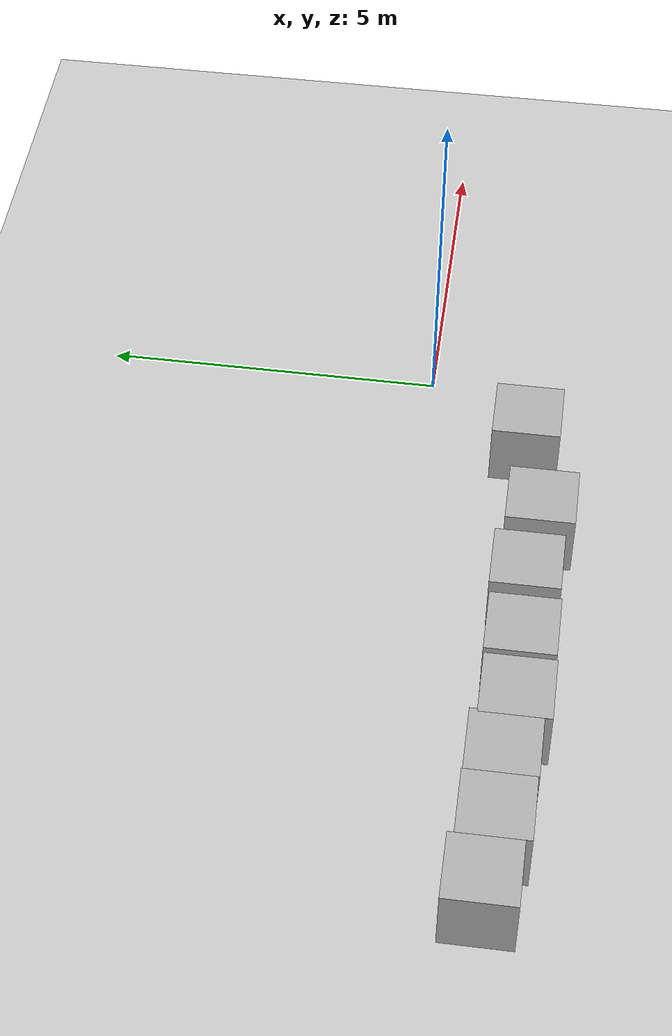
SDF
<sdf version='1.10'>
  <world name='empty'>
    <physics name='1ms' type='ignored'>
      <max_step_size>0.001</max_step_size>
      <real_time_factor>1</real_time_factor>
      <real_time_update_rate>1000</real_time_update_rate>
    </physics>
    <plugin name='gz::sim::systems::Physics' filename='gz-sim-physics-system'/>
    <plugin name='gz::sim::systems::UserCommands' filename='gz-sim-user-commands-system'/>
    <plugin name='gz::sim::systems::SceneBroadcaster' filename='gz-sim-scene-broadcaster-system'/>
    <plugin name='gz::sim::systems::Contact' filename='gz-sim-contact-system'/>
    <gravity>0 0 -9.8000000000000007</gravity>
    <magnetic_field>5.5644999999999998e-06 2.2875799999999999e-05 -4.2388400000000002e-05</magnetic_field>
    <atmosphere type='adiabatic'/>
    <scene>
      <ambient>0.400000006 0.400000006 0.400000006 1</ambient>
      <background>0.699999988 0.699999988 0.699999988 1</background>
      <shadows>true</shadows>
    </scene>
    <model name='ground_plane'>
      <static>true</static>
      <link name='link'>
        <collision name='collision'>
          <geometry>
            <plane>
              <normal>0 0 1</normal>
              <size>100 100</size>
            </plane>
          </geometry>
          <surface>
            <friction>
              <ode/>
            </friction>
            <bounce/>
            <contact/>
          </surface>
        </collision>
        <visual name='visual'>
          <geometry>
            <plane>
              <normal>0 0 1</normal>
              <size>100 100</size>
            </plane>
          </geometry>
          <material>
            <ambient>0.800000012 0.800000012 0.800000012 1</ambient>
            <diffuse>0.800000012 0.800000012 0.800000012 1</diffuse>
            <specular>0.800000012 0.800000012 0.800000012 1</specular>
          </material>
        </visual>
        <pose>0 0 0 0 0 0</pose>
        <inertial>
          <pose>0 0 0 0 0 0</pose>
          <mass>1</mass>
          <inertia>
            <ixx>1</ixx>
            <ixy>0</ixy>
            <ixz>0</ixz>
            <iyy>1</iyy>
            <iyz>0</iyz>
            <izz>1</izz>
          </inertia>
        </inertial>
        <enable_wind>false</enable_wind>
      </link>
      <pose>0 0 0 0 0 0</pose>
      <self_collide>false</self_collide>
    </model>
    <model name='box'>
      <pose>-9.4547189633832751 -1.5274398591356846 0.5 0 0 0</pose>
      <link name='box_link'>
        <inertial>
          <inertia>
            <ixx>0.16666</ixx>
            <ixy>0</ixy>
            <ixz>0</ixz>
            <iyy>0.16666</iyy>
            <iyz>0</iyz>
            <izz>0.16666</izz>
          </inertia>
          <mass>1</mass>
          <pose>0 0 0 0 0 0</pose>
        </inertial>
        <collision name='box_collision'>
          <geometry>
            <box>
              <size>1 1 1</size>
            </box>
          </geometry>
          <surface>
            <friction>
              <ode/>
            </friction>
            <bounce/>
            <contact/>
          </surface>
        </collision>
        <visual name='box_visual'>
          <geometry>
            <box>
              <size>1 1 1</size>
            </box>
          </geometry>
          <material>
            <ambient>0.300000012 0.300000012 0.300000012 1</ambient>
            <diffuse>0.699999988 0.699999988 0.699999988 1</diffuse>
            <specular>1 1 1 1</specular>
          </material>
        </visual>
        <pose>0 0 0 0 0 0</pose>
        <enable_wind>false</enable_wind>
      </link>
      <static>false</static>
      <self_collide>false</self_collide>
    </model>
    <model name='box_1'>
      <pose>-8.4555912731370206 -1.6190004017384112 0.5 0 0 0</pose>
      <link name='box_link'>
        <inertial>
          <inertia>
            <ixx>0.16666</ixx>
            <ixy>0</ixy>
            <ixz>0</ixz>
            <iyy>0.16666</iyy>
            <iyz>0</iyz>
            <izz>0.16666</izz>
          </inertia>
          <mass>1</mass>
        </inertial>
        <collision name='box_collision'>
          <geometry>
            <box>
              <size>1 1 1</size>
            </box>
          </geometry>
          <surface>
            <friction>
              <ode/>
            </friction>
            <bounce/>
            <contact/>
          </surface>
        </collision>
        <visual name='box_visual'>
          <geometry>
            <box>
              <size>1 1 1</size>
            </box>
          </geometry>
          <material>
            <ambient>0.300000012 0.300000012 0.300000012 1</ambient>
            <diffuse>0.699999988 0.699999988 0.699999988 1</diffuse>
            <specular>1 1 1 1</specular>
          </material>
        </visual>
      </link>
      <static>false</static>
      <self_collide>false</self_collide>
    </model>
    <model name='box_2'>
      <pose>-7.4649486622870898 -1.6327078749713024 0.5 0 0 0</pose>
      <link name='box_link'>
        <inertial>
          <inertia>
            <ixx>0.16666</ixx>
            <ixy>0</ixy>
            <ixz>0</ixz>
            <iyy>0.16666</iyy>
            <iyz>0</iyz>
            <izz>0.16666</izz>
          </inertia>
          <mass>1</mass>
        </inertial>
        <collision name='box_collision'>
          <geometry>
            <box>
              <size>1 1 1</size>
            </box>
          </geometry>
          <surface>
            <friction>
              <ode/>
            </friction>
            <bounce/>
            <contact/>
          </surface>
        </collision>
        <visual name='box_visual'>
          <geometry>
            <box>
              <size>1 1 1</size>
            </box>
          </geometry>
          <material>
            <ambient>0.300000012 0.300000012 0.300000012 1</ambient>
            <diffuse>0.699999988 0.699999988 0.699999988 1</diffuse>
            <specular>1 1 1 1</specular>
          </material>
        </visual>
      </link>
      <static>false</static>
      <self_collide>false</self_collide>
    </model>
    <model name='box_3'>
      <pose>-6.5075352751003068 -1.7400794698465774 0.5 0 0 0</pose>
      <link name='box_link'>
        <inertial>
          <inertia>
            <ixx>0.16666</ixx>
            <ixy>0</ixy>
            <ixz>0</ixz>
            <iyy>0.16666</iyy>
            <iyz>0</iyz>
            <izz>0.16666</izz>
          </inertia>
          <mass>1</mass>
        </inertial>
        <collision name='box_collision'>
          <geometry>
            <box>
              <size>1 1 1</size>
            </box>
          </geometry>
          <surface>
            <friction>
              <ode/>
            </friction>
            <bounce/>
            <contact/>
          </surface>
        </collision>
        <visual name='box_visual'>
          <geometry>
            <box>
              <size>1 1 1</size>
            </box>
          </geometry>
          <material>
            <ambient>0.300000012 0.300000012 0.300000012 1</ambient>
            <diffuse>0.699999988 0.699999988 0.699999988 1</diffuse>
            <specular>1 1 1 1</specular>
          </material>
        </visual>
      </link>
      <static>false</static>
      <self_collide>false</self_collide>
    </model>
    <model name='box_4'>
      <pose>-5.427005174726709 -1.7246119632749428 0.5 0 0 0</pose>
      <link name='box_link'>
        <inertial>
          <inertia>
            <ixx>0.16666</ixx>
            <ixy>0</ixy>
            <ixz>0</ixz>
            <iyy>0.16666</iyy>
            <iyz>0</iyz>
            <izz>0.16666</izz>
          </inertia>
          <mass>1</mass>
        </inertial>
        <collision name='box_collision'>
          <geometry>
            <box>
              <size>1 1 1</size>
            </box>
          </geometry>
          <surface>
            <friction>
              <ode/>
            </friction>
            <bounce/>
            <contact/>
          </surface>
        </collision>
        <visual name='box_visual'>
          <geometry>
            <box>
              <size>1 1 1</size>
            </box>
          </geometry>
          <material>
            <ambient>0.300000012 0.300000012 0.300000012 1</ambient>
            <diffuse>0.699999988 0.699999988 0.699999988 1</diffuse>
            <specular>1 1 1 1</specular>
          </material>
        </visual>
      </link>
      <static>false</static>
      <self_collide>false</self_collide>
    </model>
    <model name='box_5'>
      <pose>-4.2472950413854598 -1.7045487639364314 0.5 0 0 0</pose>
      <link name='box_link'>
        <inertial>
          <inertia>
            <ixx>0.16666</ixx>
            <ixy>0</ixy>
            <ixz>0</ixz>
            <iyy>0.16666</iyy>
            <iyz>0</iyz>
            <izz>0.16666</izz>
          </inertia>
          <mass>1</mass>
        </inertial>
        <collision name='box_collision'>
          <geometry>
            <box>
              <size>1 1 1</size>
            </box>
          </geometry>
          <surface>
            <friction>
              <ode/>
            </friction>
            <bounce/>
            <contact/>
          </surface>
        </collision>
        <visual name='box_visual'>
          <geometry>
            <box>
              <size>1 1 1</size>
            </box>
          </geometry>
          <material>
            <ambient>0.300000012 0.300000012 0.300000012 1</ambient>
            <diffuse>0.699999988 0.699999988 0.699999988 1</diffuse>
            <specular>1 1 1 1</specular>
          </material>
        </visual>
      </link>
      <static>false</static>
      <self_collide>false</self_collide>
    </model>
    <model name='box_6'>
      <pose>-3.0047210292782927 -1.8268387216601942 0.5 0 0 0</pose>
      <link name='box_link'>
        <inertial>
          <inertia>
            <ixx>0.16666</ixx>
            <ixy>0</ixy>
            <ixz>0</ixz>
            <iyy>0.16666</iyy>
            <iyz>0</iyz>
            <izz>0.16666</izz>
          </inertia>
          <mass>1</mass>
        </inertial>
        <collision name='box_collision'>
          <geometry>
            <box>
              <size>1 1 1</size>
            </box>
          </geometry>
          <surface>
            <friction>
              <ode/>
            </friction>
            <bounce/>
            <contact/>
          </surface>
        </collision>
        <visual name='box_visual'>
          <geometry>
            <box>
              <size>1 1 1</size>
            </box>
          </geometry>
          <material>
            <ambient>0.300000012 0.300000012 0.300000012 1</ambient>
            <diffuse>0.699999988 0.699999988 0.699999988 1</diffuse>
            <specular>1 1 1 1</specular>
          </material>
        </visual>
      </link>
      <static>false</static>
      <self_collide>false</self_collide>
    </model>
    <model name='box_7'>
      <pose>-1.3233004970740128 -1.5047919888176544 0.5 0 0 0</pose>
      <link name='box_link'>
        <inertial>
          <inertia>
            <ixx>0.16666</ixx>
            <ixy>0</ixy>
            <ixz>0</ixz>
            <iyy>0.16666</iyy>
            <iyz>0</iyz>
            <izz>0.16666</izz>
          </inertia>
          <mass>1</mass>
        </inertial>
        <collision name='box_collision'>
          <geometry>
            <box>
              <size>1 1 1</size>
            </box>
          </geometry>
          <surface>
            <friction>
              <ode/>
            </friction>
            <bounce/>
            <contact/>
          </surface>
        </collision>
        <visual name='box_visual'>
          <geometry>
            <box>
              <size>1 1 1</size>
            </box>
          </geometry>
          <material>
            <ambient>0.300000012 0.300000012 0.300000012 1</ambient>
            <diffuse>0.699999988 0.699999988 0.699999988 1</diffuse>
            <specular>1 1 1 1</specular>
          </material>
        </visual>
      </link>
      <static>false</static>
      <self_collide>false</self_collide>
    </model>
    <light name='sun' type='directional'>
      <pose>0 0 10 0 0 0</pose>
      <cast_shadows>true</cast_shadows>
      <intensity>1</intensity>
      <direction>-0.5 0.10000000000000001 -0.90000000000000002</direction>
      <diffuse>0.800000012 0.800000012 0.800000012 1</diffuse>
      <specular>0.200000003 0.200000003 0.200000003 1</specular>
      <attenuation>
        <range>1000</range>
        <linear>0.01</linear>
        <constant>0.90000000000000002</constant>
        <quadratic>0.001</quadratic>
      </attenuation>
      <spot>
        <inner_angle>0</inner_angle>
        <outer_angle>0</outer_angle>
        <falloff>0</falloff>
      </spot>
    </light>
  </world>
</sdf>
